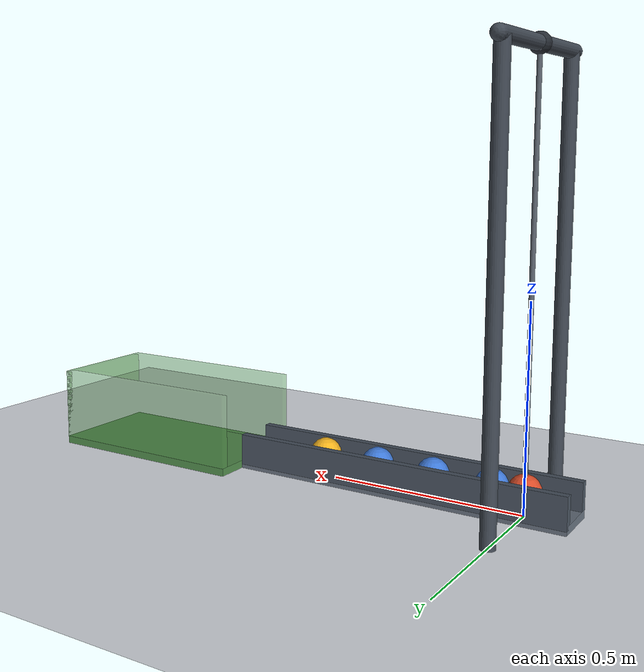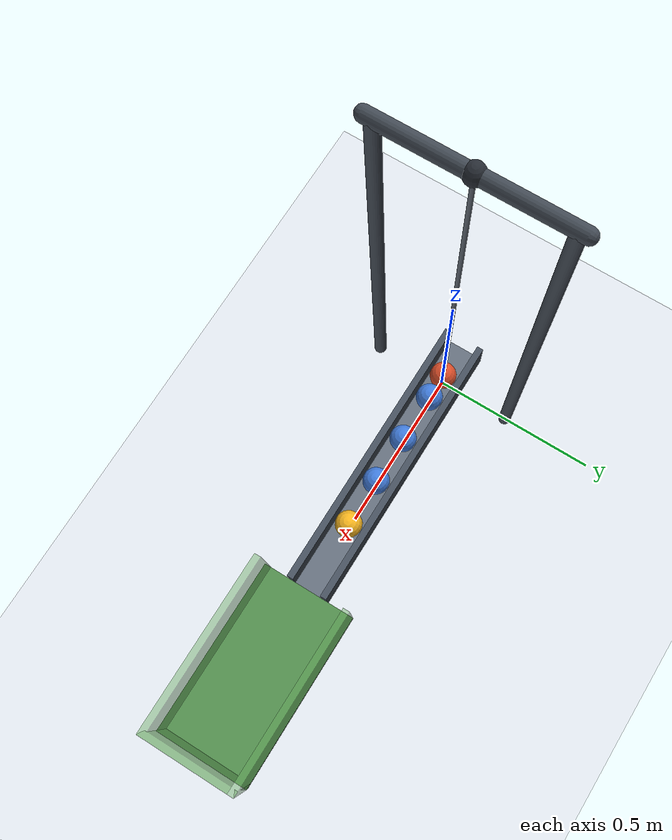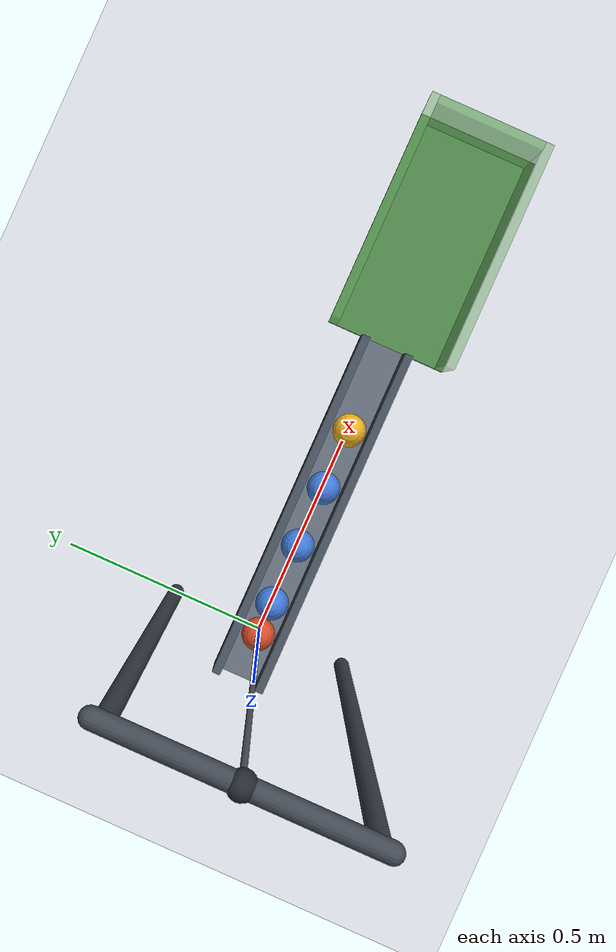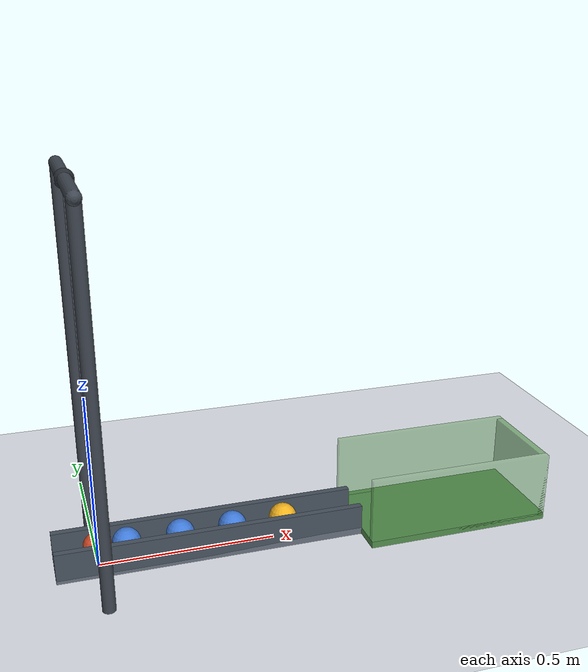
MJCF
<mujoco model="pendulum_four_ball_transfer">
  <compiler angle="radian"/>
  <option timestep="0.002" gravity="0 0 -9.81" integrator="RK4" solver="Newton" iterations="100" tolerance="1e-10"/>
  <size njmax="300" nconmax="100"/>

  <visual>
    <headlight ambient="0.35 0.35 0.35" diffuse="0.65 0.65 0.65" specular="0.2 0.2 0.2"/>
    <rgba haze="0.9 0.93 0.96 1"/>
  </visual>

  <worldbody>
    <light name="main_light" pos="-0.5 -1.5 3" dir="0.2 0.3 -1" directional="true"/>
    <camera name="overview" pos="0.25 -3.2 1.65" xyaxes="1 0 0 0 0.38 0.925"/>

    <geom name="floor" type="plane" pos="0 0 0" size="4 3 0.1" rgba="0.88 0.90 0.93 1" condim="6" friction="0.8 0.01 0.02" priority="2" solref="0.008 1" solimp="0.99 0.99 0.001"/>

    <body name="stand" pos="0 0 0">
      <geom name="stand_left_post" type="cylinder" pos="0 -0.22 0.53" size="0.018 0.53" rgba="0.25 0.28 0.32 1" contype="0" conaffinity="0"/>
      <geom name="stand_right_post" type="cylinder" pos="0 0.22 0.53" size="0.018 0.53" rgba="0.25 0.28 0.32 1" contype="0" conaffinity="0"/>
      <geom name="stand_crossbar" type="capsule" fromto="0 -0.24 1.06 0 0.24 1.06" size="0.018" rgba="0.25 0.28 0.32 1" contype="0" conaffinity="0"/>
      <geom name="stand_pivot" type="sphere" pos="0 0 1.06" size="0.025" rgba="0.15 0.17 0.20 1" contype="0" conaffinity="0"/>
    </body>

    <!-- A 1 m pendulum released at 60 degrees starts 0.5 m above its lowest point. -->
    <body name="pendulum" pos="0 0 1.06">
      <inertial pos="0 0 -1" mass="0.2" diaginertia="0.000128 0.000128 0.000128"/>
      <joint name="pendulum_hinge" type="hinge" axis="0 1 0" damping="0.001"/>
      <geom name="pendulum_arm" type="capsule" fromto="0 0 -0.025 0 0 -0.96" size="0.006" mass="0" rgba="0.35 0.38 0.42 1" contype="0" conaffinity="0"/>
      <geom name="pendulum_bob" type="sphere" pos="0 0 -1" size="0.04" mass="0.2" rgba="0.85 0.30 0.16 1" condim="6" friction="0.05 0.001 0.0001" priority="1" solref="-40000 -20" solimp="0.99 0.99 0.001"/>
    </body>

    <!-- The guide surface is level at z = 0.02 m. -->
    <body name="rail" pos="0.315 0 0.01">
      <geom name="rail_base" type="box" pos="0 0 0" size="0.435 0.065 0.01" rgba="0.40 0.44 0.49 1" condim="6" friction="0.1 0.001 0.0005" priority="2" solref="0.008 1" solimp="0.99 0.99 0.001"/>
      <geom name="rail_left_guide" type="box" pos="0 -0.055 0.04" size="0.435 0.01 0.04" rgba="0.28 0.32 0.37 1" condim="6" friction="0.1 0.001 0.0005" priority="2" solref="0.008 1" solimp="0.99 0.99 0.001"/>
      <geom name="rail_right_guide" type="box" pos="0 0.055 0.04" size="0.435 0.01 0.04" rgba="0.28 0.32 0.37 1" condim="6" friction="0.1 0.001 0.0005" priority="2" solref="0.008 1" solimp="0.99 0.99 0.001"/>
    </body>

    <!-- Four equal 0.2 kg balls, with initial center spacing of 0.15 m. -->
    <body name="ball1" pos="0.08 0 0.06">
      <freejoint name="ball1_free"/>
      <geom name="ball1_sphere" type="sphere" size="0.04" mass="0.2" rgba="0.25 0.48 0.85 1" condim="6" friction="0.05 0.001 0.0001" priority="1" solref="-40000 -20" solimp="0.99 0.99 0.001"/>
    </body>

    <body name="ball2" pos="0.23 0 0.06">
      <freejoint name="ball2_free"/>
      <geom name="ball2_sphere" type="sphere" size="0.04" mass="0.2" rgba="0.25 0.48 0.85 1" condim="6" friction="0.05 0.001 0.0001" priority="1" solref="-40000 -20" solimp="0.99 0.99 0.001"/>
    </body>

    <body name="ball3" pos="0.38 0 0.06">
      <freejoint name="ball3_free"/>
      <geom name="ball3_sphere" type="sphere" size="0.04" mass="0.2" rgba="0.25 0.48 0.85 1" condim="6" friction="0.05 0.001 0.0001" priority="1" solref="-40000 -20" solimp="0.99 0.99 0.001"/>
    </body>

    <body name="ball4" pos="0.53 0 0.06">
      <freejoint name="ball4_free"/>
      <geom name="ball4_sphere" type="sphere" size="0.04" mass="0.2" rgba="0.95 0.70 0.12 1" condim="6" friction="0.05 0.001 0.0001" priority="1" solref="-40000 -20" solimp="0.99 0.99 0.001"/>
    </body>

    <!-- Open-front box: its floor continues the rail without a step.
         Strong sliding and rolling friction dissipate the incoming ball's motion. -->
    <body name="box" pos="1.025 0 0.01">
      <geom name="box_bottom" type="box" pos="0 0 0" size="0.275 0.15 0.01" rgba="0.32 0.55 0.30 1" condim="6" friction="0.9 0.02 0.03" priority="3" solref="0.008 1" solimp="0.99 0.99 0.001"/>
      <geom name="box_left_wall" type="box" pos="0 -0.14 0.10" size="0.275 0.01 0.10" rgba="0.38 0.65 0.35 0.45" condim="6" friction="0.9 0.02 0.03" priority="3" solref="0.008 1" solimp="0.99 0.99 0.001"/>
      <geom name="box_right_wall" type="box" pos="0 0.14 0.10" size="0.275 0.01 0.10" rgba="0.38 0.65 0.35 0.45" condim="6" friction="0.9 0.02 0.03" priority="3" solref="0.008 1" solimp="0.99 0.99 0.001"/>
      <geom name="box_back_wall" type="box" pos="0.265 0 0.10" size="0.01 0.15 0.10" rgba="0.38 0.65 0.35 0.65" condim="6" friction="0.9 0.02 0.03" priority="3" solref="0.008 1" solimp="0.99 0.99 0.001"/>
    </body>
  </worldbody>

  <keyframe>
    <key name="start" qpos="1.0471975511965976 0.08 0 0.06 1 0 0 0 0.23 0 0.06 1 0 0 0 0.38 0 0.06 1 0 0 0 0.53 0 0.06 1 0 0 0"/>
  </keyframe>
</mujoco>
